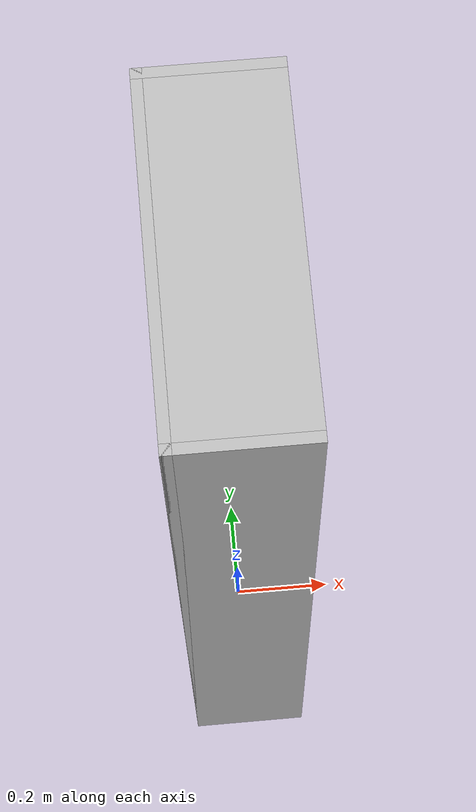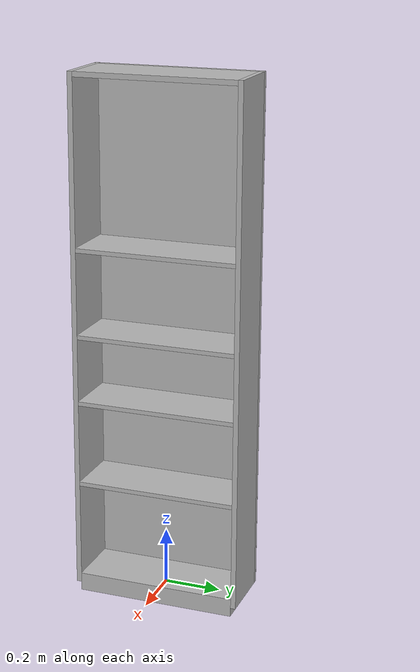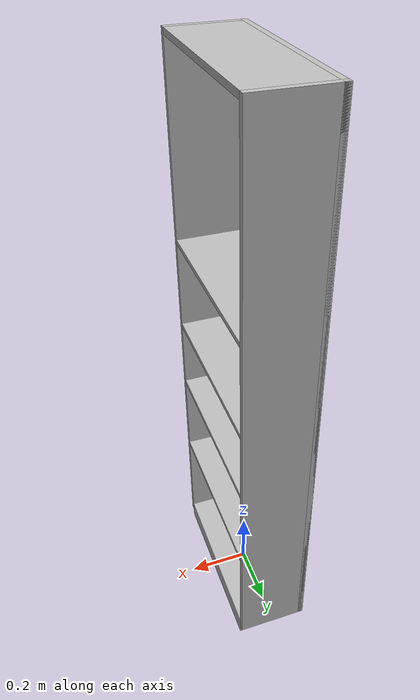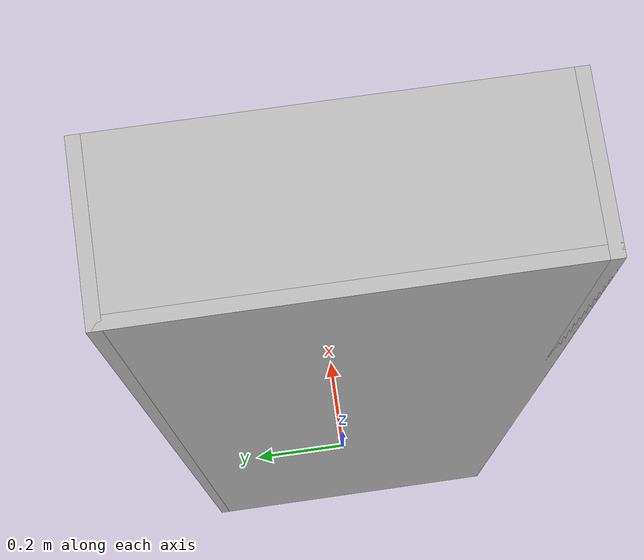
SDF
<?xml version="1.0"?>
<sdf version="1.6">
  <model name="rwc2018/bookcase">
    <link name="1_link">
      <collision name="1_col">
        <geometry>
          <box>
            <size>0.23 0.018 1.82</size>
          </box>
        </geometry>
      </collision>
      <visual name="1_vis">
        <geometry>
          <box>
            <size>0.23 0.018 1.82</size>
          </box>
        </geometry>
      </visual>
      <pose>0 -0.291 0.91 0 0 0</pose>
    </link>
    <link name="2_link">
      <collision name="2_col">
        <geometry>
          <box>
            <size>0.23 0.018 1.82</size>
          </box>
        </geometry>
      </collision>
      <visual name="2_vis">
        <geometry>
          <box>
            <size>0.23 0.018 1.82</size>
          </box>
        </geometry>
      </visual>
      <pose>0 0.291 0.91 0 0 0</pose>
    </link>
    <link name="3_link">
      <collision name="3_col">
        <geometry>
          <box>
            <size>0.018 0.6 1.82</size>
          </box>
        </geometry>
      </collision>
      <visual name="3_vis">
        <geometry>
          <box>
            <size>0.018 0.6 1.82</size>
          </box>
        </geometry>
      </visual>
      <pose>-0.106 0 0.91 0 0 0</pose>
    </link>
    <link name="4_link">
      <collision name="4_col">
        <geometry>
          <box>
            <size>0.212 0.564 0.018</size>
          </box>
        </geometry>
      </collision>
      <visual name="4_vis">
        <geometry>
          <box>
            <size>0.212 0.564 0.018</size>
          </box>
        </geometry>
      </visual>
      <pose>0.009 0 1.811 0 0 0</pose>
    </link>
    <link name="5_link">
      <collision name="5_col">
        <geometry>
          <box>
            <size>0.212 0.564 0.065</size>
          </box>
        </geometry>
      </collision>
      <visual name="5_vis">
        <geometry>
          <box>
            <size>0.212 0.564 0.065</size>
          </box>
        </geometry>
      </visual>
      <pose>0.009 0 0.001 0 0 0</pose>
    </link>
    <link name="6_link">
      <collision name="6_col">
        <geometry>
          <box>
            <size>0.212 0.564 0.015</size>
          </box>
        </geometry>
      </collision>
      <visual name="6_vis">
        <geometry>
          <box>
            <size>0.212 0.564 0.015</size>
          </box>
        </geometry>
      </visual>
      <pose>0.009 0 0.38 0 0 0</pose>
    </link>
    <link name="7_link">
      <collision name="7_col">
        <geometry>
          <box>
            <size>0.212 0.564 0.015</size>
          </box>
        </geometry>
      </collision>
      <visual name="7_vis">
        <geometry>
          <box>
            <size>0.212 0.564 0.015</size>
          </box>
        </geometry>
      </visual>
      <pose>0.009 0 0.68 0 0 0</pose>
    </link>
    <link name="8_link">
      <collision name="8_col">
        <geometry>
          <box>
            <size>0.212 0.564 0.015</size>
          </box>
        </geometry>
      </collision>
      <visual name="8_vis">
        <geometry>
          <box>
            <size>0.212 0.564 0.015</size>
          </box>
        </geometry>
      </visual>
      <pose>0.009 0 0.92 0 0 0</pose>
    </link>
    <link name="9_link">
      <collision name="9_col">
        <geometry>
          <box>
            <size>0.212 0.564 0.015</size>
          </box>
        </geometry>
      </collision>
      <visual name="9_vis">
        <geometry>
          <box>
            <size>0.212 0.564 0.015</size>
          </box>
        </geometry>
      </visual>
      <pose>0.009 0 1.225 0 0 0</pose>
    </link>
    <link name="in_front_of">
      <virtual_volume name="in_front_of_vv">
        <geometry>
          <box>
            <size>0.2 0.4 0.01</size>
          </box>
        </geometry>
        <pose>0.615 0.0 0.005 0 0 0</pose>
      </virtual_volume>
    </link>
    <link name="shelf1">
      <virtual_volume name="shelf1_vv">
        <geometry>
          <box>
            <size>0.192 0.504 0.19</size>
          </box>
        </geometry>
        <pose>0.009 0.0 0.17 0 0 0</pose>
      </virtual_volume>
    </link>
    <link name="shelf2">
      <virtual_volume name="shelf2_vv">
        <geometry>
          <box>
            <size>0.192 0.504 0.19</size>
          </box>
        </geometry>
        <pose>0.009 0.0 0.5 0 0 0</pose>
      </virtual_volume>
    </link>
    <link name="shelf3">
      <virtual_volume name="shelf3_vv">
        <geometry>
          <box>
            <size>0.192 0.504 0.19</size>
          </box>
        </geometry>
        <pose>0.009 0.0 0.8 0 0 0</pose>
      </virtual_volume>
    </link>
    <link name="shelf4">
      <virtual_volume name="shelf4_vv">
        <geometry>
          <box>
            <size>0.192 0.504 0.19</size>
          </box>
        </geometry>
        <pose>0.009 0.0 1.04 0 0 0</pose>
      </virtual_volume>
    </link>
    <link name="shelf5">
      <virtual_volume name="shelf5_vv">
        <geometry>
          <box>
            <size>0.192 0.504 0.19</size>
          </box>
        </geometry>
        <pose>0.009 0.0 1.345 0 0 0</pose>
      </virtual_volume>
    </link>
    <link name="on_top_of">
      <virtual_volume name="on_top_of_vv">
        <geometry>
          <box>
            <size>0.192 0.504 0.2</size>
          </box>
        </geometry>
        <pose>0.009 0.0 0.795 0 0 0</pose>
      </virtual_volume>
    </link>
    <static>true</static>
  </model>
</sdf>
